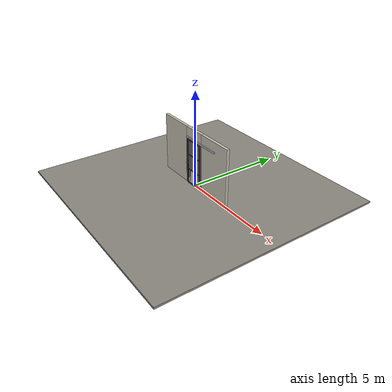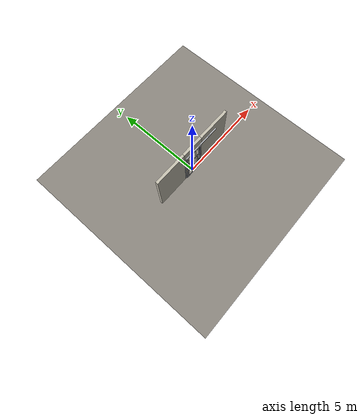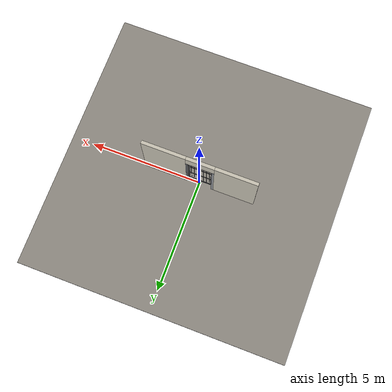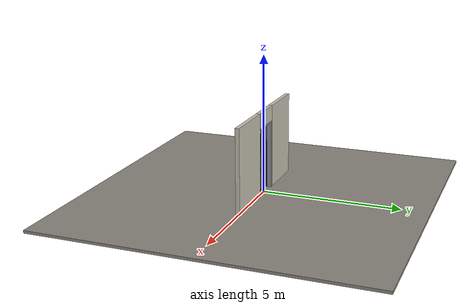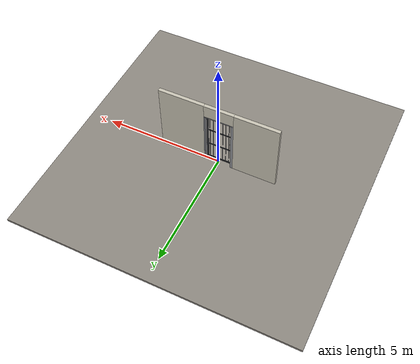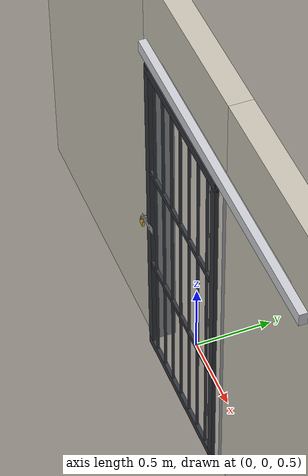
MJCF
<?xml version="1.0" ?>
<mujoco model="db0602_sliding_single_full">
  <compiler angle="radian" meshdir="../../hardware" texturedir="../../textures" autolimits="true" inertiafromgeom="false"/>
  <option timestep="0.002" integrator="implicitfast" cone="elliptic" impratio="10" noslip_iterations="3">
    <flag multiccd="enable"/>
  </option>
  <size memory="16M"/>
  <default>
    <geom condim="4" solref="0.005 1" solimp="0.95 0.99 0.001"/>
    <joint solreflimit="0.005 1" solimplimit="0.95 0.99 0.001"/>
    <tendon solreflimit="0.005 1"/>
    <equality solref="0.002 1"/>
  </default>
  <visual>
    <headlight ambient="0.4 0.4 0.4" diffuse="0.7 0.7 0.7" specular="0.2 0.2 0.2"/>
    <quality shadowsize="4096"/>
    <map znear="0.01" zfar="60"/>
  </visual>
  <asset>
    <material name="mat_floor" rgba="0.55 0.53 0.5 1" specular="0.2" shininess="0.15" reflectance="0"/>
    <material name="mat_wall" rgba="0.78 0.76 0.7 1" specular="0.2" shininess="0.1" reflectance="0"/>
    <material name="mat_frame" rgba="0.55 0.56 0.58 1" specular="0.8" shininess="0.55" reflectance="0.4"/>
    <material name="mat_track" rgba="0.8 0.81 0.83 1" specular="0.8" shininess="0.6" reflectance="0.4"/>
    <material name="mat_leaf" rgba="0.2 0.21 0.23 1" specular="0.23" shininess="0.42" reflectance="0.02"/>
    <material name="mat_roller" rgba="0.65 0.66 0.68 1" specular="0.74" shininess="0.5" reflectance="0.36"/>
    <material name="mat_op_steel_galvanized" rgba="0.65 0.66 0.68 1" specular="0.74" shininess="0.5" reflectance="0.36"/>
    <material name="mat_padlock" rgba="0.85 0.66 0.3 1" specular="0.8" shininess="0.75" reflectance="0.4"/>
    <material name="mat_hook" rgba="0.75 0.76 0.77 1" specular="0.8" shininess="0.65" reflectance="0.4"/>
    <texture name="skybox" type="skybox" builtin="gradient" rgb1="0.6 0.7 0.85" rgb2="0.9 0.92 0.95" width="256" height="256"/>
  </asset>
  <worldbody>
    <light name="sun" pos="1.5 -2.5 4" dir="-0.3 0.5 -0.8" directional="true" diffuse="0.8 0.8 0.8" specular="0.3 0.3 0.3" castshadow="true"/>
    <light name="fill" pos="-1.5 2.5 3" dir="0.3 -0.5 -0.7" directional="true" diffuse="0.35 0.35 0.4" castshadow="false"/>
    <camera name="robot_view" pos="0 -2.929375 2.049225" xyaxes="1 0 0 0 0.26963 0.962964" fovy="52"/>
    <camera name="far_view" pos="0 2.929375 2.049225" xyaxes="-1 0 0 0 -0.26963 0.962964" fovy="52"/>
    <camera name="iso" pos="2.226325 -2.460675 2.517925" xyaxes="0.741536 0.670913 0 -0.242917 0.268487 0.932151" fovy="46"/>
    <camera name="detail_handle" pos="-0.3955 -0.9335 1.43" xyaxes="0.97561 0.219512 0 -0.070934 0.315262 0.94635" fovy="38"/>
    <geom name="floor" type="box" size="6 6 0.05" pos="0 0 -0.05" material="mat_floor" group="0" contype="1" conaffinity="1" friction="0.8 0.005 0.0001" density="2400"/>
    <geom name="wall_left" type="box" size="0.92575 0.0725 1.529" pos="-1.57425 0 1.529" material="mat_wall" group="0" contype="1" conaffinity="1" friction="0.6 0.005 0.0001" density="800"/>
    <geom name="wall_right" type="box" size="0.95575 0.0725 1.529" pos="1.54425 0 1.529" material="mat_wall" group="0" contype="1" conaffinity="1" friction="0.6 0.005 0.0001" density="800"/>
    <geom name="wall_header" type="box" size="0.6185 0.0725 0.2775" pos="-0.03 0 2.7805" material="mat_wall" group="0" contype="1" conaffinity="1" friction="0.6 0.005 0.0001" density="800"/>
    <geom name="jamb_r" type="box" size="0.0225 0.0725 1.229" pos="0.566 0 1.229" material="mat_frame" group="0" contype="1" conaffinity="1" friction="0.6 0.005 0.0001" density="300"/>
    <geom name="jamb_head" type="box" size="0.5885 0.0725 0.0225" pos="0 0 2.4805" material="mat_frame" group="0" contype="1" conaffinity="1" friction="0.6 0.005 0.0001" density="300"/>
    <geom name="track_header" type="box" size="1.117 0.025 0.04" pos="0.5335 -0.105 2.543" material="mat_track" group="0" contype="1" conaffinity="1" friction="0.6 0.005 0.0001" density="2700"/>
    <geom name="leaf_staple_leg_n" type="box" size="0.003 0.0025 0.0365" pos="-0.5735 -0.109 1.1625" quat="0 0 -0.707107 0.707107" material="mat_op_steel_galvanized" group="0" contype="1" conaffinity="1" friction="0.6 0.005 0.0001" density="7800"/>
    <geom name="leaf_staple_leg_p" type="box" size="0.003 0.0025 0.0365" pos="-0.5735 -0.109 1.1375" quat="0 0 -0.707107 0.707107" material="mat_op_steel_galvanized" group="0" contype="1" conaffinity="1" friction="0.6 0.005 0.0001" density="7800"/>
    <geom name="leaf_staple_bridge" type="box" size="0.003 0.015 0.0025" pos="-0.5735 -0.143 1.15" quat="0 0 -0.707107 0.707107" material="mat_op_steel_galvanized" group="0" contype="1" conaffinity="1" friction="0.6 0.005 0.0001" density="7800"/>
    <geom name="leaf_staple_base" type="box" size="0.016 0.021 0.001" pos="-0.5735 -0.0735 1.15" quat="0 0 -0.707107 0.707107" material="mat_op_steel_galvanized" group="1" contype="0" conaffinity="0" density="7800"/>
    <geom name="leaf_padlock_shackle" type="capsule" size="0.004 0.016" pos="-0.5735 -0.1345 1.15" quat="0.707107 0 -0.707107 0" material="mat_padlock" group="1" contype="0" conaffinity="0" density="7850"/>
    <geom name="leaf_padlock_leg_a" type="capsule" size="0.004 0.012" pos="-0.5575 -0.1345 1.138" quat="0 1 0 0" material="mat_padlock" group="1" contype="0" conaffinity="0" density="7850"/>
    <geom name="leaf_padlock_leg_b" type="capsule" size="0.004 0.012" pos="-0.5895 -0.1345 1.138" quat="0 1 0 0" material="mat_padlock" group="1" contype="0" conaffinity="0" density="7850"/>
    <geom name="leaf_padlock_body" type="box" size="0.022 0.018 0.008" pos="-0.5735 -0.1345 1.108" quat="0 0 -0.707107 0.707107" material="mat_padlock" group="0" contype="1" conaffinity="1" friction="0.6 0.005 0.0001" density="7850"/>
    <geom name="jamb_latch_0" type="box" size="0.0525 0.0725 1.229" pos="-0.596 0 1.229" material="mat_frame" group="0" contype="1" conaffinity="1" friction="0.6 0.005 0.0001" density="300"/>
    <geom name="track_header_bracket" type="box" size="0.8936 0.00425 0.032" pos="0.5335 -0.07625 2.543" material="mat_hook" group="1" contype="0" conaffinity="0" density="7850"/>
    <site name="approach_point" pos="0 -1.5 0" quat="1 0 0 0" size="0.05" rgba="0.2 0.9 0.2 0.5" group="4"/>
    <site name="goal_point" pos="0 1.5 0" quat="1 0 0 0" size="0.05" rgba="0.2 0.9 0.2 0.5" group="4"/>
    <site name="door_plane_center" pos="0 0 1.229" quat="1 0 0 0" size="0.02" rgba="0.2 0.9 0.2 0.5" group="4"/>
    <body name="leaf" pos="0 -0.105 0">
      <inertial pos="-0.000386 -0.000013 1.239527" mass="115.431923" quat="0.500036 -0.500006 -0.499995 -0.499963" diaginertia="11.031414606 57.936162674 68.955586361"/>
      <joint name="leaf_slide" type="slide" axis="1 0 0" limited="true" range="0 0.002" damping="7.777666" frictionloss="33.995728" armature="0.5"/>
      <geom name="leaf_slab_col" type="box" size="0.5335 0.0125 1.219" pos="0 0 1.231" material="mat_leaf" group="3" contype="1" conaffinity="1" rgba="0.8 0.3 0.3 0.25" friction="0.45 0.005 0.0001" density="1"/>
      <geom name="leaf_rail_b" type="box" size="0.5335 0.0125 0.03" pos="0 0 0.042" material="mat_leaf" group="1" contype="0" conaffinity="0" density="1"/>
      <geom name="leaf_rail_t" type="box" size="0.5335 0.0125 0.03" pos="0 0 2.42" material="mat_leaf" group="1" contype="0" conaffinity="0" density="1"/>
      <geom name="leaf_stile_h" type="box" size="0.03 0.0125 1.219" pos="-0.5035 0 1.231" material="mat_leaf" group="1" contype="0" conaffinity="0" density="1"/>
      <geom name="leaf_stile_l" type="box" size="0.03 0.0125 1.219" pos="0.5035 0 1.231" material="mat_leaf" group="1" contype="0" conaffinity="0" density="1"/>
      <geom name="leaf_bar_0" type="cylinder" size="0.0095 1.159" pos="-0.405857 0 1.231" material="mat_leaf" group="1" contype="0" conaffinity="0" density="1"/>
      <geom name="leaf_bar_1" type="cylinder" size="0.0095 1.159" pos="-0.270571 0 1.231" material="mat_leaf" group="1" contype="0" conaffinity="0" density="1"/>
      <geom name="leaf_bar_2" type="cylinder" size="0.0095 1.159" pos="-0.135286 0 1.231" material="mat_leaf" group="1" contype="0" conaffinity="0" density="1"/>
      <geom name="leaf_bar_3" type="cylinder" size="0.0095 1.159" pos="0 0 1.231" material="mat_leaf" group="1" contype="0" conaffinity="0" density="1"/>
      <geom name="leaf_bar_4" type="cylinder" size="0.0095 1.159" pos="0.135286 0 1.231" material="mat_leaf" group="1" contype="0" conaffinity="0" density="1"/>
      <geom name="leaf_bar_5" type="cylinder" size="0.0095 1.159" pos="0.270571 0 1.231" material="mat_leaf" group="1" contype="0" conaffinity="0" density="1"/>
      <geom name="leaf_bar_6" type="cylinder" size="0.0095 1.159" pos="0.405857 0 1.231" material="mat_leaf" group="1" contype="0" conaffinity="0" density="1"/>
      <geom name="leaf_crossbar_33" type="box" size="0.4735 0.01 0.02" pos="0 0 0.81654" material="mat_leaf" group="1" contype="0" conaffinity="0" density="1"/>
      <geom name="leaf_crossbar_66" type="box" size="0.4735 0.01 0.02" pos="0 0 1.62108" material="mat_leaf" group="1" contype="0" conaffinity="0" density="1"/>
      <geom name="leaf_carrier_0" type="box" size="0.02 0.005 0.0545" pos="-0.4135 0 2.4445" material="mat_roller" group="1" contype="0" conaffinity="0" density="7850"/>
      <geom name="leaf_carrier_wheel_0" type="cylinder" size="0.014 0.006" pos="-0.4135 0 2.489" quat="0.707107 -0.707107 0 0" material="mat_roller" group="1" contype="0" conaffinity="0" density="7850"/>
      <geom name="leaf_carrier_1" type="box" size="0.02 0.005 0.0545" pos="0.4135 0 2.4445" material="mat_roller" group="1" contype="0" conaffinity="0" density="7850"/>
      <geom name="leaf_carrier_wheel_1" type="cylinder" size="0.014 0.006" pos="0.4135 0 2.489" quat="0.707107 -0.707107 0 0" material="mat_roller" group="1" contype="0" conaffinity="0" density="7850"/>
      <geom name="leaf_hasp_plate" type="box" size="0.024 0.0215 0.003" pos="-0.4535 -0.0155 1.15" quat="0 0 -0.707107 0.707107" material="mat_op_steel_galvanized" group="1" contype="0" conaffinity="0" density="7800"/>
      <site name="leaf_edge_mid" pos="-0.5335 0 1.231" quat="1 0 0 0" size="0.02" rgba="0.2 0.9 0.2 0.5" group="4"/>
      <body name="leaf_hasp" pos="-0.4735 -0.0185 1.15">
        <inertial pos="-0.050209 -0.001942 0" mass="0.121392" quat="0.005027 0.005027 0.707089 0.707089" diaginertia="0.000013765 0.000190104 0.000203357"/>
        <joint name="leaf_hasp_hinge" type="hinge" axis="0 0 1" limited="true" range="0 0.0015" damping="0.02" frictionloss="0.05" armature="0.005"/>
        <geom name="leaf_hasp_strap" type="box" size="0.061 0.0175 0.0015" pos="-0.061 -0.0015 0" quat="0 0 -0.707107 0.707107" material="mat_op_steel_galvanized" group="0" contype="1" conaffinity="1" friction="0.6 0.005 0.0001" density="7800"/>
        <geom name="leaf_hasp_knuckle" type="cylinder" size="0.0045 0.0215" pos="0 -0.004 0" material="mat_op_steel_galvanized" group="1" contype="0" conaffinity="0" density="7850"/>
        <site name="leaf_hasp_grip" pos="-0.102 -0.01 0" quat="1 0 0 0" size="0.01" rgba="0.2 0.9 0.2 0.5" group="4"/>
      </body>
    </body>
  </worldbody>
  <sensor>
    <jointpos name="leaf_slide_pos" joint="leaf_slide"/>
    <jointvel name="leaf_slide_vel" joint="leaf_slide"/>
    <jointpos name="leaf_hasp_hinge_pos" joint="leaf_hasp_hinge"/>
    <jointvel name="leaf_hasp_hinge_vel" joint="leaf_hasp_hinge"/>
  </sensor>
</mujoco>
